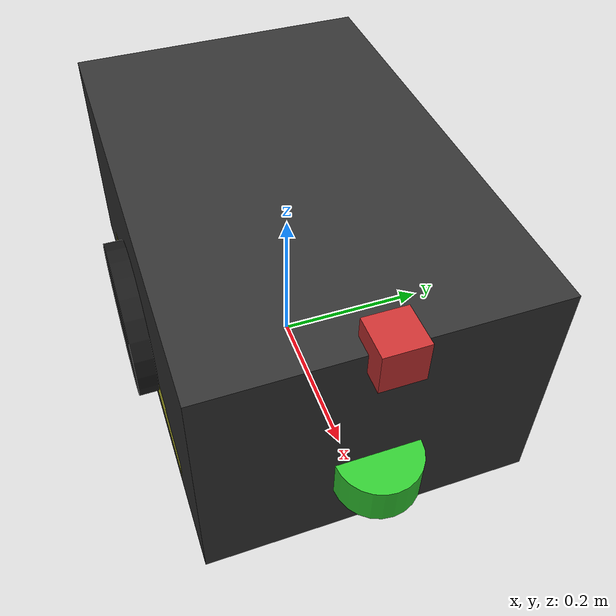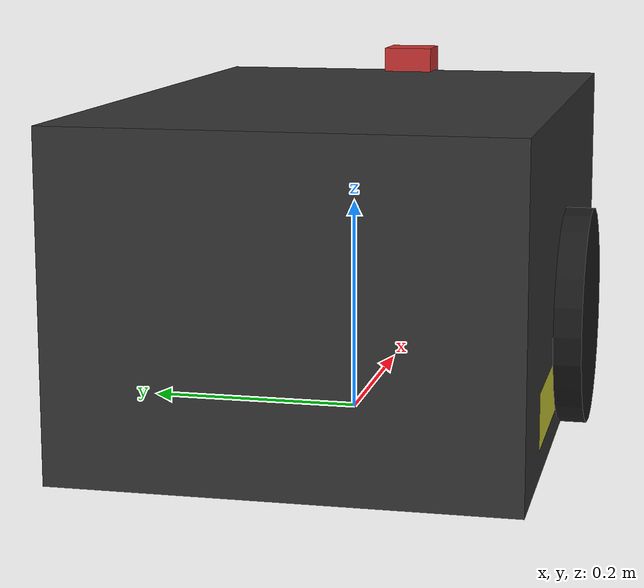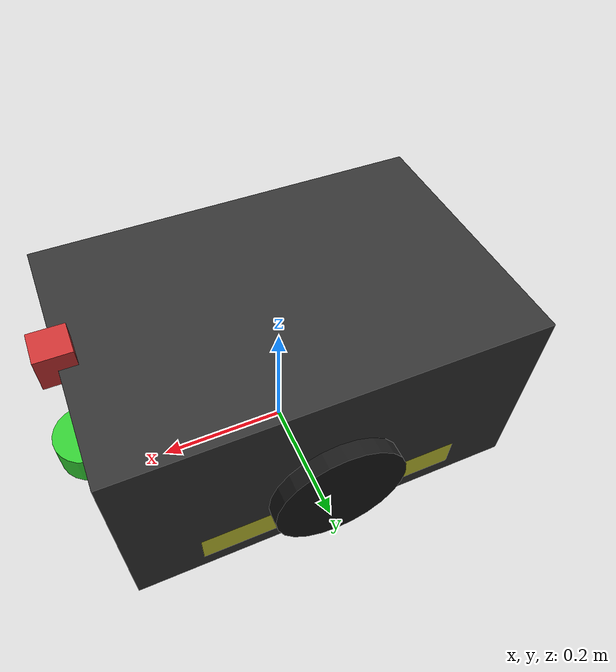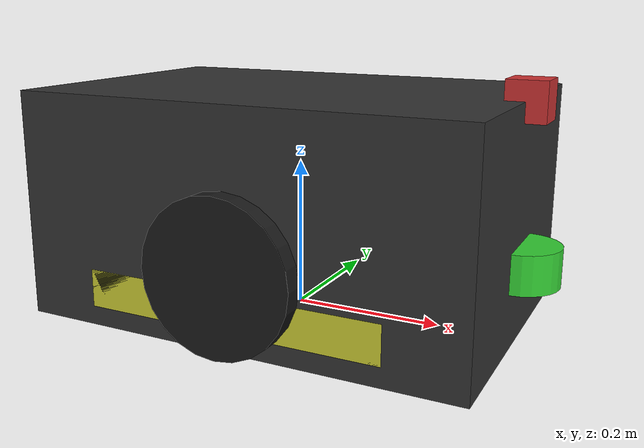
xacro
<?xml version="1.0"?>
<robot xmlns:xacro="http://www.ros.org/wiki/xacro" name="parking_bot">

  <!-- Constants -->
  <xacro:property name="PI" value="3.14159265359"/>
  <xacro:property name="wheel_radius" value="0.1"/>
  <xacro:property name="wheel_width" value="0.05"/>
  <xacro:property name="wheelbase" value="0.5"/>
  <xacro:property name="track_width" value="0.4"/>
  <xacro:property name="chassis_length" value="0.6"/>
  <xacro:property name="chassis_width" value="0.4"/>
  <xacro:property name="chassis_height" value="0.3"/>
  <xacro:property name="chassis_mass" value="10.0"/>
  <xacro:property name="wheel_mass" value="1.0"/>

  <!-- Base Link (Main Chassis) -->
  <link name="base_link">
    <inertial>
      <mass value="${chassis_mass}"/>
      <origin xyz="0 0 0"/>
      <inertia ixx="0.5" ixy="0" ixz="0" iyy="0.5" iyz="0" izz="0.3"/>
    </inertial>
    <collision>
      <origin xyz="0 0 ${chassis_height/2}" rpy="0 0 0"/>
      <geometry>
        <box size="${chassis_length} ${chassis_width} ${chassis_height}"/>
      </geometry>
      <contact_coefficients mu="0.7" mu2="0.7"/>
    </collision>
    <visual>
      <origin xyz="0 0 ${chassis_height/2}" rpy="0 0 0"/>
      <geometry>
        <box size="${chassis_length} ${chassis_width} ${chassis_height}"/>
      </geometry>
      <material name="chassis_color">
        <color rgba="0.2 0.2 0.2 1"/>
      </material>
    </visual>
  </link>

  <!-- Left Wheel -->
  <link name="left_wheel">
    <inertial>
      <mass value="${wheel_mass}"/>
      <inertia ixx="0.01" ixy="0" ixz="0" iyy="0.01" iyz="0" izz="0.01"/>
    </inertial>
    <collision>
      <origin xyz="0 0 0" rpy="${PI/2} 0 0"/>
      <geometry>
        <cylinder radius="${wheel_radius}" length="${wheel_width}"/>
      </geometry>
    </collision>
    <visual>
      <origin xyz="0 0 0" rpy="${PI/2} 0 0"/>
      <geometry>
        <cylinder radius="${wheel_radius}" length="${wheel_width}"/>
      </geometry>
      <material name="wheel_color">
        <color rgba="0.1 0.1 0.1 1"/>
      </material>
    </visual>
  </link>

  <!-- Right Wheel -->
  <link name="right_wheel">
    <inertial>
      <mass value="${wheel_mass}"/>
      <inertia ixx="0.01" ixy="0" ixz="0" iyy="0.01" iyz="0" izz="0.01"/>
    </inertial>
    <collision>
      <origin xyz="0 0 0" rpy="${PI/2} 0 0"/>
      <geometry>
        <cylinder radius="${wheel_radius}" length="${wheel_width}"/>
      </geometry>
    </collision>
    <visual>
      <origin xyz="0 0 0" rpy="${PI/2} 0 0"/>
      <geometry>
        <cylinder radius="${wheel_radius}" length="${wheel_width}"/>
      </geometry>
      <material name="wheel_color">
        <color rgba="0.1 0.1 0.1 1"/>
      </material>
    </visual>
  </link>

  <!-- Left Wheel Joint -->
  <joint name="left_wheel_joint" type="revolute">
    <parent link="base_link"/>
    <child link="left_wheel"/>
    <origin xyz="0 ${track_width/2} ${wheel_radius}" rpy="0 0 0"/>
    <axis xyz="0 1 0"/>
    <limit effort="100" velocity="10" lower="-${PI}" upper="${PI}"/>
    <dynamics damping="0.1" friction="0.1"/>
  </joint>

  <!-- Right Wheel Joint -->
  <joint name="right_wheel_joint" type="revolute">
    <parent link="base_link"/>
    <child link="right_wheel"/>
    <origin xyz="0 -${track_width/2} ${wheel_radius}" rpy="0 0 0"/>
    <axis xyz="0 1 0"/>
    <limit effort="100" velocity="10" lower="-${PI}" upper="${PI}"/>
    <dynamics damping="0.1" friction="0.1"/>
  </joint>

  <!-- Caster Wheel (Front) -->
  <link name="caster_wheel">
    <inertial>
      <mass value="0.5"/>
      <inertia ixx="0.001" ixy="0" ixz="0" iyy="0.001" iyz="0" izz="0.001"/>
    </inertial>
    <collision>
      <origin xyz="0 0 0" rpy="0 0 0"/>
      <geometry>
        <sphere radius="0.05"/>
      </geometry>
    </collision>
    <visual>
      <origin xyz="0 0 0" rpy="0 0 0"/>
      <geometry>
        <sphere radius="0.05"/>
      </geometry>
      <material name="caster_color">
        <color rgba="0.5 0.5 0.5 1"/>
      </material>
    </visual>
  </link>

  <!-- Caster Wheel Joint -->
  <joint name="caster_wheel_joint" type="fixed">
    <parent link="base_link"/>
    <child link="caster_wheel"/>
    <origin xyz="${chassis_length/2 - 0.1} 0 0.05" rpy="0 0 0"/>
  </joint>

  <!-- On-Bot Camera Link -->
  <link name="camera_link">
    <inertial>
      <mass value="0.1"/>
      <inertia ixx="0.001" ixy="0" ixz="0" iyy="0.001" iyz="0" izz="0.001"/>
    </inertial>
    <collision>
      <geometry>
        <box size="0.05 0.05 0.05"/>
      </geometry>
    </collision>
    <visual>
      <geometry>
        <box size="0.05 0.05 0.05"/>
      </geometry>
      <material name="camera_color">
        <color rgba="0.8 0.2 0.2 1"/>
      </material>
    </visual>
  </link>

  <!-- Camera Joint (mounted on front, facing forward) -->
  <joint name="camera_joint" type="fixed">
    <parent link="base_link"/>
    <child link="camera_link"/>
    <origin xyz="${chassis_length/2} 0 ${chassis_height}" rpy="0 0 0"/>
  </joint>

  <!-- On-Bot LiDAR Link -->
  <link name="lidar_link">
    <inertial>
      <mass value="0.2"/>
      <inertia ixx="0.001" ixy="0" ixz="0" iyy="0.001" iyz="0" izz="0.001"/>
    </inertial>
    <collision>
      <geometry>
        <cylinder radius="0.05" length="0.05"/>
      </geometry>
    </collision>
    <visual>
      <geometry>
        <cylinder radius="0.05" length="0.05"/>
      </geometry>
      <material name="lidar_color">
        <color rgba="0.2 0.8 0.2 1"/>
      </material>
    </visual>
  </link>

  <!-- LiDAR Joint (mounted on front bumper) -->
  <joint name="lidar_joint" type="fixed">
    <parent link="base_link"/>
    <child link="lidar_link"/>
    <origin xyz="${chassis_length/2} 0 0.1" rpy="0 0 0"/>
  </joint>

  <!-- Lift Link (Prismatic joint for lifting) -->
  <link name="lift_link">
    <inertial>
      <mass value="2.0"/>
      <inertia ixx="0.01" ixy="0" ixz="0" iyy="0.01" iyz="0" izz="0.01"/>
    </inertial>
    <collision>
      <origin xyz="0 0 0" rpy="0 0 0"/>
      <geometry>
        <box size="0.4 0.4 0.05"/>
      </geometry>
    </collision>
    <visual>
      <origin xyz="0 0 0" rpy="0 0 0"/>
      <geometry>
        <box size="0.4 0.4 0.05"/>
      </geometry>
      <material name="lift_color">
        <color rgba="0.8 0.8 0.2 1"/>
      </material>
    </visual>
  </link>

  <!-- Lift Joint (Prismatic: moves up/down) -->
  <joint name="lift_joint" type="prismatic">
    <parent link="base_link"/>
    <child link="lift_link"/>
    <origin xyz="0 0 0.05" rpy="0 0 0"/>
    <axis xyz="0 0 1"/>
    <limit effort="500" velocity="0.05" lower="0" upper="0.15"/>
    <dynamics damping="10" friction="5"/>
  </joint>

  <!-- Gazebo Differential Drive Controller -->
  <gazebo>
    <plugin filename="gz-sim-diff-drive-system" name="gz::sim::systems::DiffDrive">
      <left_joint>left_wheel_joint</left_joint>
      <right_joint>right_wheel_joint</right_joint>
      <wheel_separation>${track_width}</wheel_separation>
      <wheel_diameter>${2*wheel_radius}</wheel_diameter>
      <max_linear_acceleration>1.0</max_linear_acceleration>
      <max_angular_acceleration>2.0</max_angular_acceleration>
      <max_linear_velocity>1.0</max_linear_velocity>
      <max_angular_velocity>2.0</max_angular_velocity>
      <min_charge_percentage>0.0</min_charge_percentage>
      <max_charge_percentage>100.0</max_charge_percentage>
      <charge_rate>0.0</charge_rate>
    </plugin>
  </gazebo>

  <!-- On-Bot Camera Sensor (Gazebo) -->
  <gazebo reference="camera_link">
    <sensor name="camera" type="camera">
      <camera>
        <horizontal_fov>1.047</horizontal_fov>
        <image>
          <width>640</width>
          <height>480</height>
        </image>
        <clip>
          <near>0.1</near>
          <far>100</far>
        </clip>
      </camera>
      <always_on>true</always_on>
      <update_rate>10</update_rate>
      <visualize>true</visualize>
      <topic>/bot/camera/image</topic>
    </sensor>
  </gazebo>

  <!-- On-Bot LiDAR Sensor (2D) -->
  <gazebo reference="lidar_link">
    <sensor name="lidar" type="ray">
      <topic>/bot/lidar/scan</topic>
      <update_rate>10</update_rate>
      <ray>
        <scan>
          <horizontal>
            <samples>360</samples>
            <resolution>1.0</resolution>
            <min_angle>-3.14159</min_angle>
            <max_angle>3.14159</max_angle>
          </horizontal>
        </scan>
        <range>
          <min>0.1</min>
          <max>10.0</max>
          <resolution>0.015</resolution>
        </range>
        <noise>
          <type>gaussian</type>
          <mean>0.0</mean>
          <stddev>0.02</stddev>
        </noise>
      </ray>
    </sensor>
  </gazebo>

</robot>
